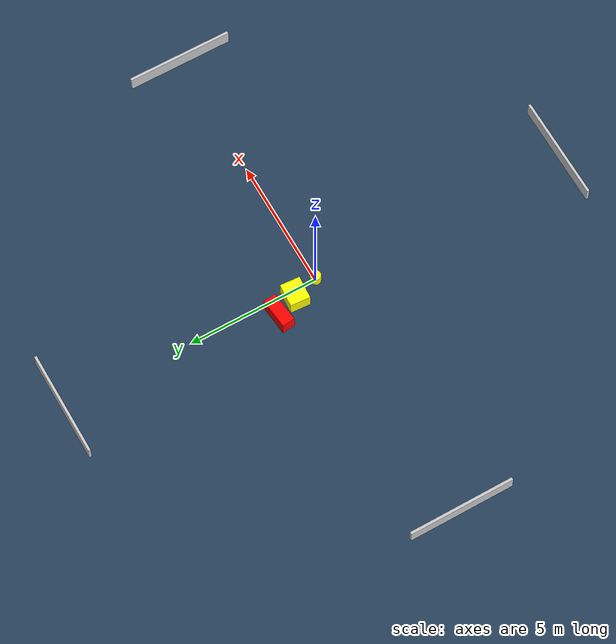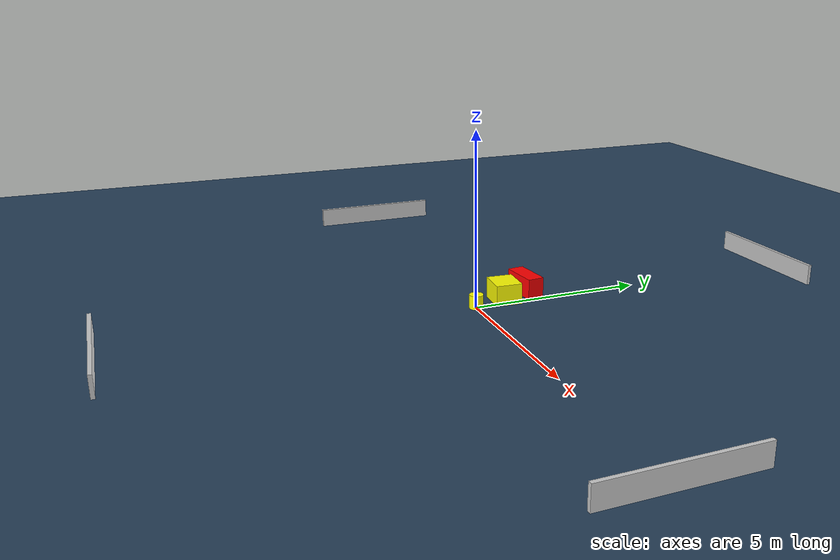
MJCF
<?xml version="1.0" ?>
<mujoco model="generated_environment">
  <option timestep="0.01" integrator="RK4" cone="elliptic"/>
  <default>
    <geom density="1"/>
  </default>
  <asset>
    <texture builtin="gradient" height="3072" name="skybox" rgb1="0.3 0.5 0.7" rgb2="0 0 0" type="skybox" width="512"/>
    <texture builtin="checker" height="300" name="groundplane" rgb1="0.2 0.3 0.4" rgb2="0.1 0.2 0.3" type="2d" width="300"/>
    <material name="groundplane" reflectance="0.2" texrepeat="5 5" texture="groundplane"/>
  </asset>
  <worldbody>
    <light dir="0 0 -1" directional="true" pos="0 0 1.5"/>
    <geom condim="3" friction="0.5 0.005 0.001" material="groundplane" name="floor" pos="0 0 0" size="0 0 0.05" type="plane"/>
    <body name="walls">
      <geom name="wall_1" condim="4" pos="-10.0 0.0 0.3" rgba="0.800000011920929 0.800000011920929 0.800000011920929 1.0" size="0.05 2.0 0.3" type="box"/>
      <geom name="wall_2" condim="4" pos="10.0 0.0 0.3" rgba="0.800000011920929 0.800000011920929 0.800000011920929 1.0" size="0.05 2.0 0.3" type="box"/>
      <geom name="wall_3" condim="4" pos="0.0 -10.0 0.3" rgba="0.800000011920929 0.800000011920929 0.800000011920929 1.0" size="2.0 0.05 0.3" type="box"/>
      <geom name="wall_4" condim="4" pos="0.0 10.0 0.3" rgba="0.800000011920929 0.800000011920929 0.800000011920929 1.0" size="2.0 0.05 0.3" type="box"/>
    </body>
    <body name="robot">
      <joint name="joint_x" type="slide" pos="0 0 0" axis="1 0 0"/>
      <joint name="joint_y" type="slide" pos="0 0 0" axis="0 1 0"/>
      <geom name="robot" type="cylinder" pos="0.0 0.0 0.2" size="0.2 0.2 0.0" mass="5.0" friction="1.0 0.005 0.0001" condim="4" rgba="1.0 1.0 0.0 1.0"/>
    </body>
    <body name="obstacle_1_movable">
      <geom name="obstacle_1_movable" condim="4" pos="-0.2694758381987894 0.9755278719470317 0.3" euler="0 0 356.2407264734896" friction="0.0 0.005 0.001" rgba="1.0 1.0 0.0 1.0" size="0.43648949828719663 0.38042755003420364 0.3" type="box" mass="0.1"/>
      <joint type="free"/>
    </body>
    <body name="obstacle_2_static">
      <geom name="obstacle_2_static" condim="4" pos="-0.6187342622093637 1.813804424398172 0.3" euler="0 0 6.044192786524651" friction="0.0 0.005 0.001" rgba="1.0 0.0 0.0 1.0" size="0.5805190547514127 0.24319700868222718 0.3" type="box"/>
    </body>
  </worldbody>
  <actuator>
    <motor name="actuator_x" joint="joint_x" gear="1" ctrlrange="-1 1"/>
    <motor name="actuator_y" joint="joint_y" gear="1" ctrlrange="-1 1"/>
  </actuator>
</mujoco>
